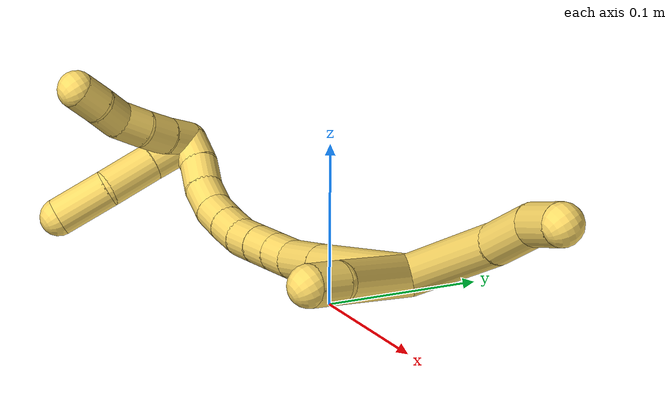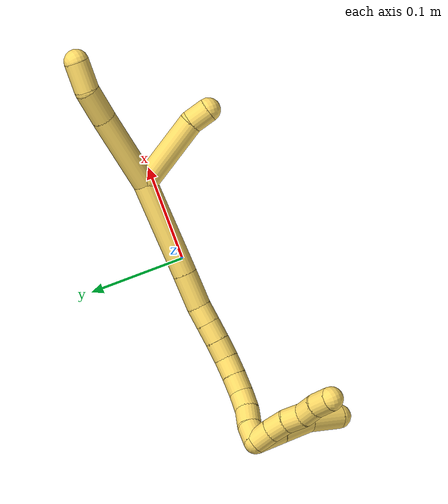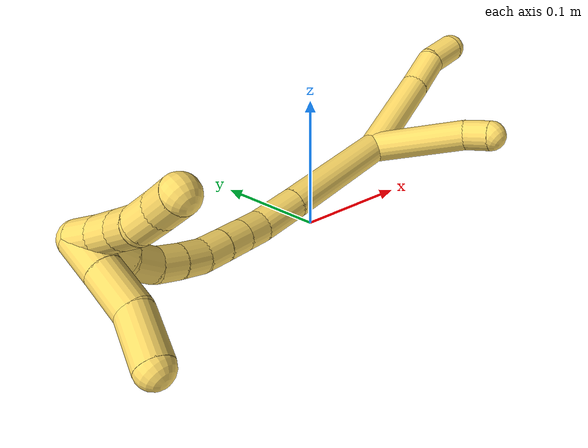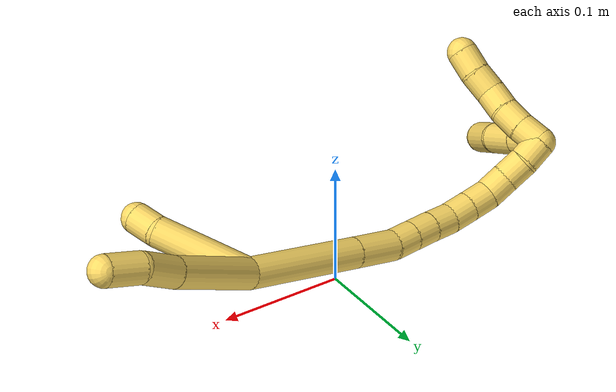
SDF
<sdf version="1.7">
 <world name="default">
  <model name="5">
   <static>0</static>
   <link name="5">
    <collision name="collision-cylinder-e_1_2_8">
     <pose>0.03386 0.019565 -0.014752 -2.21685 0.944353 -1.59518</pose>
     <geometry><cylinder><radius>0.0125</radius><length>0.083592</length></cylinder></geometry>
     <surface>
      <friction><ode><mu>1.16</mu><mu2>1.16</mu2><slip1>0</slip1><slip2>0</slip2></ode></friction>
      <contact><ode><kp>1e+06</kp><kd>1</kd><max_vel>0</max_vel><min_depth>0.001</min_depth></ode></contact>
     </surface>
    </collision>
    <visual name="visual-cylinder-e_1_2_8">
     <pose>0.03386 0.019565 -0.014752 -2.21685 0.944353 -1.59518</pose>
     <geometry><cylinder><radius>0.0125</radius><length>0.083592</length></cylinder></geometry>
     <material><ambient>1 0.858824 0.4 1</ambient></material>
    </visual>
    <collision name="collision-cylinder-e_2_8_9">
     <pose>0.081348 0.048662 -0.0358 -2.15456 0.873228 -1.42915</pose>
     <geometry><cylinder><radius>0.0125</radius><length>0.035566</length></cylinder></geometry>
     <surface>
      <friction><ode><mu>1.16</mu><mu2>1.16</mu2><slip1>0</slip1><slip2>0</slip2></ode></friction>
      <contact><ode><kp>1e+06</kp><kd>1</kd><max_vel>0</max_vel><min_depth>0.001</min_depth></ode></contact>
     </surface>
    </collision>
    <visual name="visual-cylinder-e_2_8_9">
     <pose>0.081348 0.048662 -0.0358 -2.15456 0.873228 -1.42915</pose>
     <geometry><cylinder><radius>0.0125</radius><length>0.035566</length></cylinder></geometry>
     <material><ambient>1 0.858824 0.4 1</ambient></material>
    </visual>
    <collision name="collision-cylinder-e_3_9_6">
     <pose>0.109052 0.06434 -0.043491 -1.79387 1.14976 -1.36319</pose>
     <geometry><cylinder><radius>0.0125</radius><length>0.030842</length></cylinder></geometry>
     <surface>
      <friction><ode><mu>1.16</mu><mu2>1.16</mu2><slip1>0</slip1><slip2>0</slip2></ode></friction>
      <contact><ode><kp>1e+06</kp><kd>1</kd><max_vel>0</max_vel><min_depth>0.001</min_depth></ode></contact>
     </surface>
    </collision>
    <visual name="visual-cylinder-e_3_9_6">
     <pose>0.109052 0.06434 -0.043491 -1.79387 1.14976 -1.36319</pose>
     <geometry><cylinder><radius>0.0125</radius><length>0.030842</length></cylinder></geometry>
     <material><ambient>1 0.858824 0.4 1</ambient></material>
    </visual>
    <collision name="collision-cylinder-e_1_2_10">
     <pose>0.01606 0.024402 0.026129 -0.751236 0.42219 -0.168604</pose>
     <geometry><cylinder><radius>0.0125</radius><length>0.078385</length></cylinder></geometry>
     <surface>
      <friction><ode><mu>1.16</mu><mu2>1.16</mu2><slip1>0</slip1><slip2>0</slip2></ode></friction>
      <contact><ode><kp>1e+06</kp><kd>1</kd><max_vel>0</max_vel><min_depth>0.001</min_depth></ode></contact>
     </surface>
    </collision>
    <visual name="visual-cylinder-e_1_2_10">
     <pose>0.01606 0.024402 0.026129 -0.751236 0.42219 -0.168604</pose>
     <geometry><cylinder><radius>0.0125</radius><length>0.078385</length></cylinder></geometry>
     <material><ambient>1 0.858824 0.4 1</ambient></material>
    </visual>
    <collision name="collision-cylinder-e_2_10_5">
     <pose>0.033847 0.054762 0.061107 -0.592552 0.160601 -0.049121</pose>
     <geometry><cylinder><radius>0.0125</radius><length>0.021615</length></cylinder></geometry>
     <surface>
      <friction><ode><mu>1.16</mu><mu2>1.16</mu2><slip1>0</slip1><slip2>0</slip2></ode></friction>
      <contact><ode><kp>1e+06</kp><kd>1</kd><max_vel>0</max_vel><min_depth>0.001</min_depth></ode></contact>
     </surface>
    </collision>
    <visual name="visual-cylinder-e_2_10_5">
     <pose>0.033847 0.054762 0.061107 -0.592552 0.160601 -0.049121</pose>
     <geometry><cylinder><radius>0.0125</radius><length>0.021615</length></cylinder></geometry>
     <material><ambient>1 0.858824 0.4 1</ambient></material>
    </visual>
    <collision name="collision-cylinder-e_1_2_11">
     <pose>-0.047825 -0.016592 0.006531 1.19578 -1.21392 -0.883494</pose>
     <geometry><cylinder><radius>0.0125</radius><length>0.102082</length></cylinder></geometry>
     <surface>
      <friction><ode><mu>1.16</mu><mu2>1.16</mu2><slip1>0</slip1><slip2>0</slip2></ode></friction>
      <contact><ode><kp>1e+06</kp><kd>1</kd><max_vel>0</max_vel><min_depth>0.001</min_depth></ode></contact>
     </surface>
    </collision>
    <visual name="visual-cylinder-e_1_2_11">
     <pose>-0.047825 -0.016592 0.006531 1.19578 -1.21392 -0.883494</pose>
     <geometry><cylinder><radius>0.0125</radius><length>0.102082</length></cylinder></geometry>
     <material><ambient>1 0.858824 0.4 1</ambient></material>
    </visual>
    <collision name="collision-cylinder-e_2_11_12">
     <pose>-0.113265 -0.039162 0.015196 1.22811 -1.22494 -0.919783</pose>
     <geometry><cylinder><radius>0.0125</radius><length>0.037448</length></cylinder></geometry>
     <surface>
      <friction><ode><mu>1.16</mu><mu2>1.16</mu2><slip1>0</slip1><slip2>0</slip2></ode></friction>
      <contact><ode><kp>1e+06</kp><kd>1</kd><max_vel>0</max_vel><min_depth>0.001</min_depth></ode></contact>
     </surface>
    </collision>
    <visual name="visual-cylinder-e_2_11_12">
     <pose>-0.113265 -0.039162 0.015196 1.22811 -1.22494 -0.919783</pose>
     <geometry><cylinder><radius>0.0125</radius><length>0.037448</length></cylinder></geometry>
     <material><ambient>1 0.858824 0.4 1</ambient></material>
    </visual>
    <collision name="collision-cylinder-e_3_12_13">
     <pose>-0.140742 -0.046331 0.018531 0.780331 -1.40081 -0.667417</pose>
     <geometry><cylinder><radius>0.0125</radius><length>0.020012</length></cylinder></geometry>
     <surface>
      <friction><ode><mu>1.16</mu><mu2>1.16</mu2><slip1>0</slip1><slip2>0</slip2></ode></friction>
      <contact><ode><kp>1e+06</kp><kd>1</kd><max_vel>0</max_vel><min_depth>0.001</min_depth></ode></contact>
     </surface>
    </collision>
    <visual name="visual-cylinder-e_3_12_13">
     <pose>-0.140742 -0.046331 0.018531 0.780331 -1.40081 -0.667417</pose>
     <geometry><cylinder><radius>0.0125</radius><length>0.020012</length></cylinder></geometry>
     <material><ambient>1 0.858824 0.4 1</ambient></material>
    </visual>
    <collision name="collision-cylinder-e_4_13_14">
     <pose>-0.160577 -0.048739 0.020933 0.792671 -1.40117 -0.678514</pose>
     <geometry><cylinder><radius>0.0125</radius><length>0.020237</length></cylinder></geometry>
     <surface>
      <friction><ode><mu>1.16</mu><mu2>1.16</mu2><slip1>0</slip1><slip2>0</slip2></ode></friction>
      <contact><ode><kp>1e+06</kp><kd>1</kd><max_vel>0</max_vel><min_depth>0.001</min_depth></ode></contact>
     </surface>
    </collision>
    <visual name="visual-cylinder-e_4_13_14">
     <pose>-0.160577 -0.048739 0.020933 0.792671 -1.40117 -0.678514</pose>
     <geometry><cylinder><radius>0.0125</radius><length>0.020237</length></cylinder></geometry>
     <material><ambient>1 0.858824 0.4 1</ambient></material>
    </visual>
    <collision name="collision-cylinder-e_5_14_15">
     <pose>-0.1805 -0.051364 0.023143 0.948348 -1.39833 -0.814815</pose>
     <geometry><cylinder><radius>0.0125</radius><length>0.0202</length></cylinder></geometry>
     <surface>
      <friction><ode><mu>1.16</mu><mu2>1.16</mu2><slip1>0</slip1><slip2>0</slip2></ode></friction>
      <contact><ode><kp>1e+06</kp><kd>1</kd><max_vel>0</max_vel><min_depth>0.001</min_depth></ode></contact>
     </surface>
    </collision>
    <visual name="visual-cylinder-e_5_14_15">
     <pose>-0.1805 -0.051364 0.023143 0.948348 -1.39833 -0.814815</pose>
     <geometry><cylinder><radius>0.0125</radius><length>0.0202</length></cylinder></geometry>
     <material><ambient>1 0.858824 0.4 1</ambient></material>
    </visual>
    <collision name="collision-cylinder-e_6_15_16">
     <pose>-0.200453 -0.052588 0.023949 -2.40901 -1.54325 2.39039</pose>
     <geometry><cylinder><radius>0.0125</radius><length>0.020012</length></cylinder></geometry>
     <surface>
      <friction><ode><mu>1.16</mu><mu2>1.16</mu2><slip1>0</slip1><slip2>0</slip2></ode></friction>
      <contact><ode><kp>1e+06</kp><kd>1</kd><max_vel>0</max_vel><min_depth>0.001</min_depth></ode></contact>
     </surface>
    </collision>
    <visual name="visual-cylinder-e_6_15_16">
     <pose>-0.200453 -0.052588 0.023949 -2.40901 -1.54325 2.39039</pose>
     <geometry><cylinder><radius>0.0125</radius><length>0.020012</length></cylinder></geometry>
     <material><ambient>1 0.858824 0.4 1</ambient></material>
    </visual>
    <collision name="collision-cylinder-e_7_16_17">
     <pose>-0.220423 -0.051921 0.023046 -2.53655 -1.48593 2.48652</pose>
     <geometry><cylinder><radius>0.0125</radius><length>0.020008</length></cylinder></geometry>
     <surface>
      <friction><ode><mu>1.16</mu><mu2>1.16</mu2><slip1>0</slip1><slip2>0</slip2></ode></friction>
      <contact><ode><kp>1e+06</kp><kd>1</kd><max_vel>0</max_vel><min_depth>0.001</min_depth></ode></contact>
     </surface>
    </collision>
    <visual name="visual-cylinder-e_7_16_17">
     <pose>-0.220423 -0.051921 0.023046 -2.53655 -1.48593 2.48652</pose>
     <geometry><cylinder><radius>0.0125</radius><length>0.020008</length></cylinder></geometry>
     <material><ambient>1 0.858824 0.4 1</ambient></material>
    </visual>
    <collision name="collision-cylinder-e_8_17_18">
     <pose>-0.239678 -0.048537 0.020038 -2.24327 -1.19079 1.90468</pose>
     <geometry><cylinder><radius>0.0125</radius><length>0.02</length></cylinder></geometry>
     <surface>
      <friction><ode><mu>1.16</mu><mu2>1.16</mu2><slip1>0</slip1><slip2>0</slip2></ode></friction>
      <contact><ode><kp>1e+06</kp><kd>1</kd><max_vel>0</max_vel><min_depth>0.001</min_depth></ode></contact>
     </surface>
    </collision>
    <visual name="visual-cylinder-e_8_17_18">
     <pose>-0.239678 -0.048537 0.020038 -2.24327 -1.19079 1.90468</pose>
     <geometry><cylinder><radius>0.0125</radius><length>0.02</length></cylinder></geometry>
     <material><ambient>1 0.858824 0.4 1</ambient></material>
    </visual>
    <collision name="collision-cylinder-e_9_18_19">
     <pose>-0.257316 -0.042107 0.013507 -2.44535 -0.988257 1.95594</pose>
     <geometry><cylinder><radius>0.0125</radius><length>0.020001</length></cylinder></geometry>
     <surface>
      <friction><ode><mu>1.16</mu><mu2>1.16</mu2><slip1>0</slip1><slip2>0</slip2></ode></friction>
      <contact><ode><kp>1e+06</kp><kd>1</kd><max_vel>0</max_vel><min_depth>0.001</min_depth></ode></contact>
     </surface>
    </collision>
    <visual name="visual-cylinder-e_9_18_19">
     <pose>-0.257316 -0.042107 0.013507 -2.44535 -0.988257 1.95594</pose>
     <geometry><cylinder><radius>0.0125</radius><length>0.020001</length></cylinder></geometry>
     <material><ambient>1 0.858824 0.4 1</ambient></material>
    </visual>
    <collision name="collision-cylinder-e_10_19_1">
     <pose>-0.274488 -0.034496 0.006936 -2.09294 -1.08037 1.60705</pose>
     <geometry><cylinder><radius>0.0125</radius><length>0.02</length></cylinder></geometry>
     <surface>
      <friction><ode><mu>1.16</mu><mu2>1.16</mu2><slip1>0</slip1><slip2>0</slip2></ode></friction>
      <contact><ode><kp>1e+06</kp><kd>1</kd><max_vel>0</max_vel><min_depth>0.001</min_depth></ode></contact>
     </surface>
    </collision>
    <visual name="visual-cylinder-e_10_19_1">
     <pose>-0.274488 -0.034496 0.006936 -2.09294 -1.08037 1.60705</pose>
     <geometry><cylinder><radius>0.0125</radius><length>0.02</length></cylinder></geometry>
     <material><ambient>1 0.858824 0.4 1</ambient></material>
    </visual>
    <collision name="collision-cylinder-e_1_1_20">
     <pose>-0.281762 -0.023191 0.011328 -0.819874 0.155408 -0.067644</pose>
     <geometry><cylinder><radius>0.0125</radius><length>0.02</length></cylinder></geometry>
     <surface>
      <friction><ode><mu>1.16</mu><mu2>1.16</mu2><slip1>0</slip1><slip2>0</slip2></ode></friction>
      <contact><ode><kp>1e+06</kp><kd>1</kd><max_vel>0</max_vel><min_depth>0.001</min_depth></ode></contact>
     </surface>
    </collision>
    <visual name="visual-cylinder-e_1_1_20">
     <pose>-0.281762 -0.023191 0.011328 -0.819874 0.155408 -0.067644</pose>
     <geometry><cylinder><radius>0.0125</radius><length>0.02</length></cylinder></geometry>
     <material><ambient>1 0.858824 0.4 1</ambient></material>
    </visual>
    <collision name="collision-cylinder-e_2_20_21">
     <pose>-0.279509 -0.008314 0.024466 -0.874596 0.070545 -0.032989</pose>
     <geometry><cylinder><radius>0.0125</radius><length>0.02</length></cylinder></geometry>
     <surface>
      <friction><ode><mu>1.16</mu><mu2>1.16</mu2><slip1>0</slip1><slip2>0</slip2></ode></friction>
      <contact><ode><kp>1e+06</kp><kd>1</kd><max_vel>0</max_vel><min_depth>0.001</min_depth></ode></contact>
     </surface>
    </collision>
    <visual name="visual-cylinder-e_2_20_21">
     <pose>-0.279509 -0.008314 0.024466 -0.874596 0.070545 -0.032989</pose>
     <geometry><cylinder><radius>0.0125</radius><length>0.02</length></cylinder></geometry>
     <material><ambient>1 0.858824 0.4 1</ambient></material>
    </visual>
    <collision name="collision-cylinder-e_3_21_22">
     <pose>-0.279867 0.006964 0.037245 -0.873939 -0.106513 0.049787</pose>
     <geometry><cylinder><radius>0.0125</radius><length>0.02</length></cylinder></geometry>
     <surface>
      <friction><ode><mu>1.16</mu><mu2>1.16</mu2><slip1>0</slip1><slip2>0</slip2></ode></friction>
      <contact><ode><kp>1e+06</kp><kd>1</kd><max_vel>0</max_vel><min_depth>0.001</min_depth></ode></contact>
     </surface>
    </collision>
    <visual name="visual-cylinder-e_3_21_22">
     <pose>-0.279867 0.006964 0.037245 -0.873939 -0.106513 0.049787</pose>
     <geometry><cylinder><radius>0.0125</radius><length>0.02</length></cylinder></geometry>
     <material><ambient>1 0.858824 0.4 1</ambient></material>
    </visual>
    <collision name="collision-cylinder-e_4_22_23">
     <pose>-0.279854 0.023622 0.047781 -1.13973 0.107889 -0.069173</pose>
     <geometry><cylinder><radius>0.0125</radius><length>0.02</length></cylinder></geometry>
     <surface>
      <friction><ode><mu>1.16</mu><mu2>1.16</mu2><slip1>0</slip1><slip2>0</slip2></ode></friction>
      <contact><ode><kp>1e+06</kp><kd>1</kd><max_vel>0</max_vel><min_depth>0.001</min_depth></ode></contact>
     </surface>
    </collision>
    <visual name="visual-cylinder-e_4_22_23">
     <pose>-0.279854 0.023622 0.047781 -1.13973 0.107889 -0.069173</pose>
     <geometry><cylinder><radius>0.0125</radius><length>0.02</length></cylinder></geometry>
     <material><ambient>1 0.858824 0.4 1</ambient></material>
    </visual>
    <collision name="collision-cylinder-e_5_23_4">
     <pose>-0.279357 0.041575 0.056416 -1.10524 -0.058034 0.035797</pose>
     <geometry><cylinder><radius>0.0125</radius><length>0.02</length></cylinder></geometry>
     <surface>
      <friction><ode><mu>1.16</mu><mu2>1.16</mu2><slip1>0</slip1><slip2>0</slip2></ode></friction>
      <contact><ode><kp>1e+06</kp><kd>1</kd><max_vel>0</max_vel><min_depth>0.001</min_depth></ode></contact>
     </surface>
    </collision>
    <visual name="visual-cylinder-e_5_23_4">
     <pose>-0.279357 0.041575 0.056416 -1.10524 -0.058034 0.035797</pose>
     <geometry><cylinder><radius>0.0125</radius><length>0.02</length></cylinder></geometry>
     <material><ambient>1 0.858824 0.4 1</ambient></material>
    </visual>
    <collision name="collision-cylinder-e_1_1_24">
     <pose>-0.283494 -0.029876 0.019394 -0.036256 -0.01242 0.000225</pose>
     <geometry><cylinder><radius>0.0125</radius><length>0.029636</length></cylinder></geometry>
     <surface>
      <friction><ode><mu>1.16</mu><mu2>1.16</mu2><slip1>0</slip1><slip2>0</slip2></ode></friction>
      <contact><ode><kp>1e+06</kp><kd>1</kd><max_vel>0</max_vel><min_depth>0.001</min_depth></ode></contact>
     </surface>
    </collision>
    <visual name="visual-cylinder-e_1_1_24">
     <pose>-0.283494 -0.029876 0.019394 -0.036256 -0.01242 0.000225</pose>
     <geometry><cylinder><radius>0.0125</radius><length>0.029636</length></cylinder></geometry>
     <material><ambient>1 0.858824 0.4 1</ambient></material>
    </visual>
    <collision name="collision-cylinder-e_2_24_25">
     <pose>-0.283906 -0.029126 0.051087 -0.012607 -0.01354 8.5e-05</pose>
     <geometry><cylinder><radius>0.0125</radius><length>0.033777</length></cylinder></geometry>
     <surface>
      <friction><ode><mu>1.16</mu><mu2>1.16</mu2><slip1>0</slip1><slip2>0</slip2></ode></friction>
      <contact><ode><kp>1e+06</kp><kd>1</kd><max_vel>0</max_vel><min_depth>0.001</min_depth></ode></contact>
     </surface>
    </collision>
    <visual name="visual-cylinder-e_2_24_25">
     <pose>-0.283906 -0.029126 0.051087 -0.012607 -0.01354 8.5e-05</pose>
     <geometry><cylinder><radius>0.0125</radius><length>0.033777</length></cylinder></geometry>
     <material><ambient>1 0.858824 0.4 1</ambient></material>
    </visual>
    <collision name="collision-cylinder-e_3_25_3">
     <pose>-0.288372 -0.031136 0.08563 0.125235 -0.233725 -0.014721</pose>
     <geometry><cylinder><radius>0.0125</radius><length>0.036587</length></cylinder></geometry>
     <surface>
      <friction><ode><mu>1.16</mu><mu2>1.16</mu2><slip1>0</slip1><slip2>0</slip2></ode></friction>
      <contact><ode><kp>1e+06</kp><kd>1</kd><max_vel>0</max_vel><min_depth>0.001</min_depth></ode></contact>
     </surface>
    </collision>
    <visual name="visual-cylinder-e_3_25_3">
     <pose>-0.288372 -0.031136 0.08563 0.125235 -0.233725 -0.014721</pose>
     <geometry><cylinder><radius>0.0125</radius><length>0.036587</length></cylinder></geometry>
     <material><ambient>1 0.858824 0.4 1</ambient></material>
    </visual>
    <collision name="collision-sphere-3">
     <pose>-0.292608 -0.033359 0.103286 0 -0 0</pose>
     <geometry><sphere><radius>0.0125</radius></sphere></geometry>
     <surface>
      <friction><ode><mu>1.16</mu><mu2>1.16</mu2><slip1>0</slip1><slip2>0</slip2></ode></friction>
      <contact><ode><kp>1e+06</kp><kd>1</kd><max_vel>0</max_vel><min_depth>0.001</min_depth></ode></contact>
     </surface>
    </collision>
    <visual name="visual-sphere-3">
     <pose>-0.292608 -0.033359 0.103286 0 -0 0</pose>
     <geometry><sphere><radius>0.0125</radius></sphere></geometry>
     <material><ambient>1 0.858824 0.4 1</ambient></material>
    </visual>
    <collision name="collision-sphere-25">
     <pose>-0.284135 -0.028913 0.067973 0 -0 0</pose>
     <geometry><sphere><radius>0.0125</radius></sphere></geometry>
     <surface>
      <friction><ode><mu>1.16</mu><mu2>1.16</mu2><slip1>0</slip1><slip2>0</slip2></ode></friction>
      <contact><ode><kp>1e+06</kp><kd>1</kd><max_vel>0</max_vel><min_depth>0.001</min_depth></ode></contact>
     </surface>
    </collision>
    <visual name="visual-sphere-25">
     <pose>-0.284135 -0.028913 0.067973 0 -0 0</pose>
     <geometry><sphere><radius>0.0125</radius></sphere></geometry>
     <material><ambient>1 0.858824 0.4 1</ambient></material>
    </visual>
    <collision name="collision-sphere-24">
     <pose>-0.283678 -0.029339 0.034201 0 -0 0</pose>
     <geometry><sphere><radius>0.0125</radius></sphere></geometry>
     <surface>
      <friction><ode><mu>1.16</mu><mu2>1.16</mu2><slip1>0</slip1><slip2>0</slip2></ode></friction>
      <contact><ode><kp>1e+06</kp><kd>1</kd><max_vel>0</max_vel><min_depth>0.001</min_depth></ode></contact>
     </surface>
    </collision>
    <visual name="visual-sphere-24">
     <pose>-0.283678 -0.029339 0.034201 0 -0 0</pose>
     <geometry><sphere><radius>0.0125</radius></sphere></geometry>
     <material><ambient>1 0.858824 0.4 1</ambient></material>
    </visual>
    <collision name="collision-sphere-4">
     <pose>-0.279937 0.050496 0.060898 0 -0 0</pose>
     <geometry><sphere><radius>0.0125</radius></sphere></geometry>
     <surface>
      <friction><ode><mu>1.16</mu><mu2>1.16</mu2><slip1>0</slip1><slip2>0</slip2></ode></friction>
      <contact><ode><kp>1e+06</kp><kd>1</kd><max_vel>0</max_vel><min_depth>0.001</min_depth></ode></contact>
     </surface>
    </collision>
    <visual name="visual-sphere-4">
     <pose>-0.279937 0.050496 0.060898 0 -0 0</pose>
     <geometry><sphere><radius>0.0125</radius></sphere></geometry>
     <material><ambient>1 0.858824 0.4 1</ambient></material>
    </visual>
    <collision name="collision-sphere-23">
     <pose>-0.278777 0.032654 0.051935 0 -0 0</pose>
     <geometry><sphere><radius>0.0125</radius></sphere></geometry>
     <surface>
      <friction><ode><mu>1.16</mu><mu2>1.16</mu2><slip1>0</slip1><slip2>0</slip2></ode></friction>
      <contact><ode><kp>1e+06</kp><kd>1</kd><max_vel>0</max_vel><min_depth>0.001</min_depth></ode></contact>
     </surface>
    </collision>
    <visual name="visual-sphere-23">
     <pose>-0.278777 0.032654 0.051935 0 -0 0</pose>
     <geometry><sphere><radius>0.0125</radius></sphere></geometry>
     <material><ambient>1 0.858824 0.4 1</ambient></material>
    </visual>
    <collision name="collision-sphere-22">
     <pose>-0.28093 0.01459 0.043627 0 -0 0</pose>
     <geometry><sphere><radius>0.0125</radius></sphere></geometry>
     <surface>
      <friction><ode><mu>1.16</mu><mu2>1.16</mu2><slip1>0</slip1><slip2>0</slip2></ode></friction>
      <contact><ode><kp>1e+06</kp><kd>1</kd><max_vel>0</max_vel><min_depth>0.001</min_depth></ode></contact>
     </surface>
    </collision>
    <visual name="visual-sphere-22">
     <pose>-0.28093 0.01459 0.043627 0 -0 0</pose>
     <geometry><sphere><radius>0.0125</radius></sphere></geometry>
     <material><ambient>1 0.858824 0.4 1</ambient></material>
    </visual>
    <collision name="collision-sphere-21">
     <pose>-0.278804 -0.000661 0.030863 0 -0 0</pose>
     <geometry><sphere><radius>0.0125</radius></sphere></geometry>
     <surface>
      <friction><ode><mu>1.16</mu><mu2>1.16</mu2><slip1>0</slip1><slip2>0</slip2></ode></friction>
      <contact><ode><kp>1e+06</kp><kd>1</kd><max_vel>0</max_vel><min_depth>0.001</min_depth></ode></contact>
     </surface>
    </collision>
    <visual name="visual-sphere-21">
     <pose>-0.278804 -0.000661 0.030863 0 -0 0</pose>
     <geometry><sphere><radius>0.0125</radius></sphere></geometry>
     <material><ambient>1 0.858824 0.4 1</ambient></material>
    </visual>
    <collision name="collision-sphere-20">
     <pose>-0.280214 -0.015968 0.018069 0 -0 0</pose>
     <geometry><sphere><radius>0.0125</radius></sphere></geometry>
     <surface>
      <friction><ode><mu>1.16</mu><mu2>1.16</mu2><slip1>0</slip1><slip2>0</slip2></ode></friction>
      <contact><ode><kp>1e+06</kp><kd>1</kd><max_vel>0</max_vel><min_depth>0.001</min_depth></ode></contact>
     </surface>
    </collision>
    <visual name="visual-sphere-20">
     <pose>-0.280214 -0.015968 0.018069 0 -0 0</pose>
     <geometry><sphere><radius>0.0125</radius></sphere></geometry>
     <material><ambient>1 0.858824 0.4 1</ambient></material>
    </visual>
    <collision name="collision-sphere-5">
     <pose>0.035576 0.06072 0.069956 0 -0 0</pose>
     <geometry><sphere><radius>0.0125</radius></sphere></geometry>
     <surface>
      <friction><ode><mu>1.16</mu><mu2>1.16</mu2><slip1>0</slip1><slip2>0</slip2></ode></friction>
      <contact><ode><kp>1e+06</kp><kd>1</kd><max_vel>0</max_vel><min_depth>0.001</min_depth></ode></contact>
     </surface>
    </collision>
    <visual name="visual-sphere-5">
     <pose>0.035576 0.06072 0.069956 0 -0 0</pose>
     <geometry><sphere><radius>0.0125</radius></sphere></geometry>
     <material><ambient>1 0.858824 0.4 1</ambient></material>
    </visual>
    <collision name="collision-sphere-10">
     <pose>0.032119 0.048803 0.052257 0 -0 0</pose>
     <geometry><sphere><radius>0.0125</radius></sphere></geometry>
     <surface>
      <friction><ode><mu>1.16</mu><mu2>1.16</mu2><slip1>0</slip1><slip2>0</slip2></ode></friction>
      <contact><ode><kp>1e+06</kp><kd>1</kd><max_vel>0</max_vel><min_depth>0.001</min_depth></ode></contact>
     </surface>
    </collision>
    <visual name="visual-sphere-10">
     <pose>0.032119 0.048803 0.052257 0 -0 0</pose>
     <geometry><sphere><radius>0.0125</radius></sphere></geometry>
     <material><ambient>1 0.858824 0.4 1</ambient></material>
    </visual>
    <collision name="collision-sphere-6">
     <pose>0.123126 0.070486 -0.044885 0 -0 0</pose>
     <geometry><sphere><radius>0.0125</radius></sphere></geometry>
     <surface>
      <friction><ode><mu>1.16</mu><mu2>1.16</mu2><slip1>0</slip1><slip2>0</slip2></ode></friction>
      <contact><ode><kp>1e+06</kp><kd>1</kd><max_vel>0</max_vel><min_depth>0.001</min_depth></ode></contact>
     </surface>
    </collision>
    <visual name="visual-sphere-6">
     <pose>0.123126 0.070486 -0.044885 0 -0 0</pose>
     <geometry><sphere><radius>0.0125</radius></sphere></geometry>
     <material><ambient>1 0.858824 0.4 1</ambient></material>
    </visual>
    <collision name="collision-sphere-9">
     <pose>0.094977 0.058193 -0.042096 0 -0 0</pose>
     <geometry><sphere><radius>0.0125</radius></sphere></geometry>
     <surface>
      <friction><ode><mu>1.16</mu><mu2>1.16</mu2><slip1>0</slip1><slip2>0</slip2></ode></friction>
      <contact><ode><kp>1e+06</kp><kd>1</kd><max_vel>0</max_vel><min_depth>0.001</min_depth></ode></contact>
     </surface>
    </collision>
    <visual name="visual-sphere-9">
     <pose>0.094977 0.058193 -0.042096 0 -0 0</pose>
     <geometry><sphere><radius>0.0125</radius></sphere></geometry>
     <material><ambient>1 0.858824 0.4 1</ambient></material>
    </visual>
    <collision name="collision-sphere-2">
     <geometry><sphere><radius>0.0125</radius></sphere></geometry>
     <surface>
      <friction><ode><mu>1.16</mu><mu2>1.16</mu2><slip1>0</slip1><slip2>0</slip2></ode></friction>
      <contact><ode><kp>1e+06</kp><kd>1</kd><max_vel>0</max_vel><min_depth>0.001</min_depth></ode></contact>
     </surface>
    </collision>
    <visual name="visual-sphere-2">
     <geometry><sphere><radius>0.0125</radius></sphere></geometry>
     <material><ambient>1 0.858824 0.4 1</ambient></material>
    </visual>
    <collision name="collision-sphere-19">
     <pose>-0.265667 -0.038578 0.009285 0 -0 0</pose>
     <geometry><sphere><radius>0.0125</radius></sphere></geometry>
     <surface>
      <friction><ode><mu>1.16</mu><mu2>1.16</mu2><slip1>0</slip1><slip2>0</slip2></ode></friction>
      <contact><ode><kp>1e+06</kp><kd>1</kd><max_vel>0</max_vel><min_depth>0.001</min_depth></ode></contact>
     </surface>
    </collision>
    <visual name="visual-sphere-19">
     <pose>-0.265667 -0.038578 0.009285 0 -0 0</pose>
     <geometry><sphere><radius>0.0125</radius></sphere></geometry>
     <material><ambient>1 0.858824 0.4 1</ambient></material>
    </visual>
    <collision name="collision-sphere-8">
     <pose>0.067719 0.039131 -0.029504 0 -0 0</pose>
     <geometry><sphere><radius>0.0125</radius></sphere></geometry>
     <surface>
      <friction><ode><mu>1.16</mu><mu2>1.16</mu2><slip1>0</slip1><slip2>0</slip2></ode></friction>
      <contact><ode><kp>1e+06</kp><kd>1</kd><max_vel>0</max_vel><min_depth>0.001</min_depth></ode></contact>
     </surface>
    </collision>
    <visual name="visual-sphere-8">
     <pose>0.067719 0.039131 -0.029504 0 -0 0</pose>
     <geometry><sphere><radius>0.0125</radius></sphere></geometry>
     <material><ambient>1 0.858824 0.4 1</ambient></material>
    </visual>
    <collision name="collision-sphere-11">
     <pose>-0.09565 -0.033184 0.013063 0 -0 0</pose>
     <geometry><sphere><radius>0.0125</radius></sphere></geometry>
     <surface>
      <friction><ode><mu>1.16</mu><mu2>1.16</mu2><slip1>0</slip1><slip2>0</slip2></ode></friction>
      <contact><ode><kp>1e+06</kp><kd>1</kd><max_vel>0</max_vel><min_depth>0.001</min_depth></ode></contact>
     </surface>
    </collision>
    <visual name="visual-sphere-11">
     <pose>-0.09565 -0.033184 0.013063 0 -0 0</pose>
     <geometry><sphere><radius>0.0125</radius></sphere></geometry>
     <material><ambient>1 0.858824 0.4 1</ambient></material>
    </visual>
    <collision name="collision-sphere-12">
     <pose>-0.13088 -0.045141 0.017329 0 -0 0</pose>
     <geometry><sphere><radius>0.0125</radius></sphere></geometry>
     <surface>
      <friction><ode><mu>1.16</mu><mu2>1.16</mu2><slip1>0</slip1><slip2>0</slip2></ode></friction>
      <contact><ode><kp>1e+06</kp><kd>1</kd><max_vel>0</max_vel><min_depth>0.001</min_depth></ode></contact>
     </surface>
    </collision>
    <visual name="visual-sphere-12">
     <pose>-0.13088 -0.045141 0.017329 0 -0 0</pose>
     <geometry><sphere><radius>0.0125</radius></sphere></geometry>
     <material><ambient>1 0.858824 0.4 1</ambient></material>
    </visual>
    <collision name="collision-sphere-13">
     <pose>-0.150603 -0.047522 0.019734 0 -0 0</pose>
     <geometry><sphere><radius>0.0125</radius></sphere></geometry>
     <surface>
      <friction><ode><mu>1.16</mu><mu2>1.16</mu2><slip1>0</slip1><slip2>0</slip2></ode></friction>
      <contact><ode><kp>1e+06</kp><kd>1</kd><max_vel>0</max_vel><min_depth>0.001</min_depth></ode></contact>
     </surface>
    </collision>
    <visual name="visual-sphere-13">
     <pose>-0.150603 -0.047522 0.019734 0 -0 0</pose>
     <geometry><sphere><radius>0.0125</radius></sphere></geometry>
     <material><ambient>1 0.858824 0.4 1</ambient></material>
    </visual>
    <collision name="collision-sphere-14">
     <pose>-0.17055 -0.049955 0.022132 0 -0 0</pose>
     <geometry><sphere><radius>0.0125</radius></sphere></geometry>
     <surface>
      <friction><ode><mu>1.16</mu><mu2>1.16</mu2><slip1>0</slip1><slip2>0</slip2></ode></friction>
      <contact><ode><kp>1e+06</kp><kd>1</kd><max_vel>0</max_vel><min_depth>0.001</min_depth></ode></contact>
     </surface>
    </collision>
    <visual name="visual-sphere-14">
     <pose>-0.17055 -0.049955 0.022132 0 -0 0</pose>
     <geometry><sphere><radius>0.0125</radius></sphere></geometry>
     <material><ambient>1 0.858824 0.4 1</ambient></material>
    </visual>
    <collision name="collision-sphere-15">
     <pose>-0.19045 -0.052772 0.024154 0 -0 0</pose>
     <geometry><sphere><radius>0.0125</radius></sphere></geometry>
     <surface>
      <friction><ode><mu>1.16</mu><mu2>1.16</mu2><slip1>0</slip1><slip2>0</slip2></ode></friction>
      <contact><ode><kp>1e+06</kp><kd>1</kd><max_vel>0</max_vel><min_depth>0.001</min_depth></ode></contact>
     </surface>
    </collision>
    <visual name="visual-sphere-15">
     <pose>-0.19045 -0.052772 0.024154 0 -0 0</pose>
     <geometry><sphere><radius>0.0125</radius></sphere></geometry>
     <material><ambient>1 0.858824 0.4 1</ambient></material>
    </visual>
    <collision name="collision-sphere-16">
     <pose>-0.210455 -0.052403 0.023744 0 -0 0</pose>
     <geometry><sphere><radius>0.0125</radius></sphere></geometry>
     <surface>
      <friction><ode><mu>1.16</mu><mu2>1.16</mu2><slip1>0</slip1><slip2>0</slip2></ode></friction>
      <contact><ode><kp>1e+06</kp><kd>1</kd><max_vel>0</max_vel><min_depth>0.001</min_depth></ode></contact>
     </surface>
    </collision>
    <visual name="visual-sphere-16">
     <pose>-0.210455 -0.052403 0.023744 0 -0 0</pose>
     <geometry><sphere><radius>0.0125</radius></sphere></geometry>
     <material><ambient>1 0.858824 0.4 1</ambient></material>
    </visual>
    <collision name="collision-sphere-17">
     <pose>-0.230391 -0.051439 0.022349 0 -0 0</pose>
     <geometry><sphere><radius>0.0125</radius></sphere></geometry>
     <surface>
      <friction><ode><mu>1.16</mu><mu2>1.16</mu2><slip1>0</slip1><slip2>0</slip2></ode></friction>
      <contact><ode><kp>1e+06</kp><kd>1</kd><max_vel>0</max_vel><min_depth>0.001</min_depth></ode></contact>
     </surface>
    </collision>
    <visual name="visual-sphere-17">
     <pose>-0.230391 -0.051439 0.022349 0 -0 0</pose>
     <geometry><sphere><radius>0.0125</radius></sphere></geometry>
     <material><ambient>1 0.858824 0.4 1</ambient></material>
    </visual>
    <collision name="collision-sphere-18">
     <pose>-0.248965 -0.045635 0.017728 0 -0 0</pose>
     <geometry><sphere><radius>0.0125</radius></sphere></geometry>
     <surface>
      <friction><ode><mu>1.16</mu><mu2>1.16</mu2><slip1>0</slip1><slip2>0</slip2></ode></friction>
      <contact><ode><kp>1e+06</kp><kd>1</kd><max_vel>0</max_vel><min_depth>0.001</min_depth></ode></contact>
     </surface>
    </collision>
    <visual name="visual-sphere-18">
     <pose>-0.248965 -0.045635 0.017728 0 -0 0</pose>
     <geometry><sphere><radius>0.0125</radius></sphere></geometry>
     <material><ambient>1 0.858824 0.4 1</ambient></material>
    </visual>
    <collision name="collision-sphere-1">
     <pose>-0.28331 -0.030413 0.004587 0 -0 0</pose>
     <geometry><sphere><radius>0.0125</radius></sphere></geometry>
     <surface>
      <friction><ode><mu>1.16</mu><mu2>1.16</mu2><slip1>0</slip1><slip2>0</slip2></ode></friction>
      <contact><ode><kp>1e+06</kp><kd>1</kd><max_vel>0</max_vel><min_depth>0.001</min_depth></ode></contact>
     </surface>
    </collision>
    <visual name="visual-sphere-1">
     <pose>-0.28331 -0.030413 0.004587 0 -0 0</pose>
     <geometry><sphere><radius>0.0125</radius></sphere></geometry>
     <material><ambient>1 0.858824 0.4 1</ambient></material>
    </visual>
    <inertial>
     <pose>-0.117545 -0.005938 0.016996 0 -0 0</pose>
     <mass>0.75</mass>
     <inertia><ixx>5e-06</ixx><ixy>0</ixy><ixz>0</ixz><iyy>0.000139</iyy><iyz>0</iyz><izz>2.1e-05</izz></inertia>
    </inertial>
   </link>
   <pose>0.084273 0.008129 0.041652 2.01493 0.145252 0.073653</pose>
  </model>
 </world>
</sdf>
